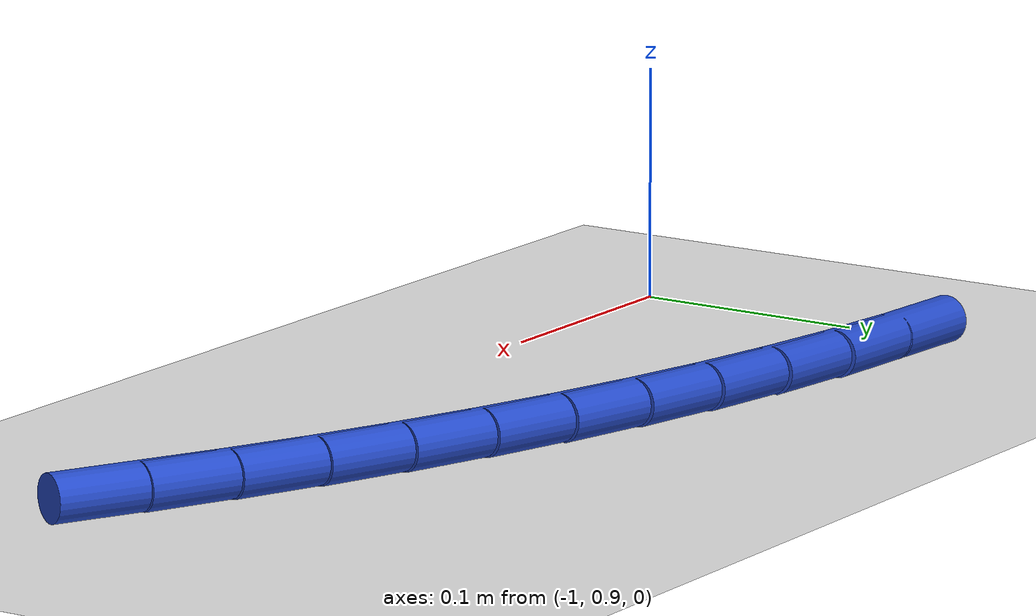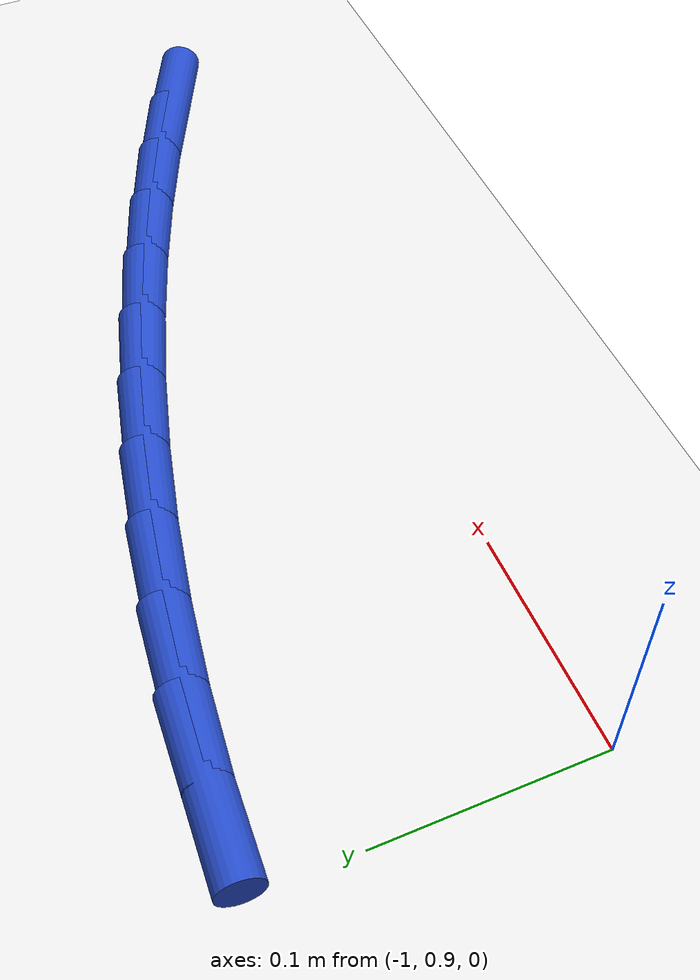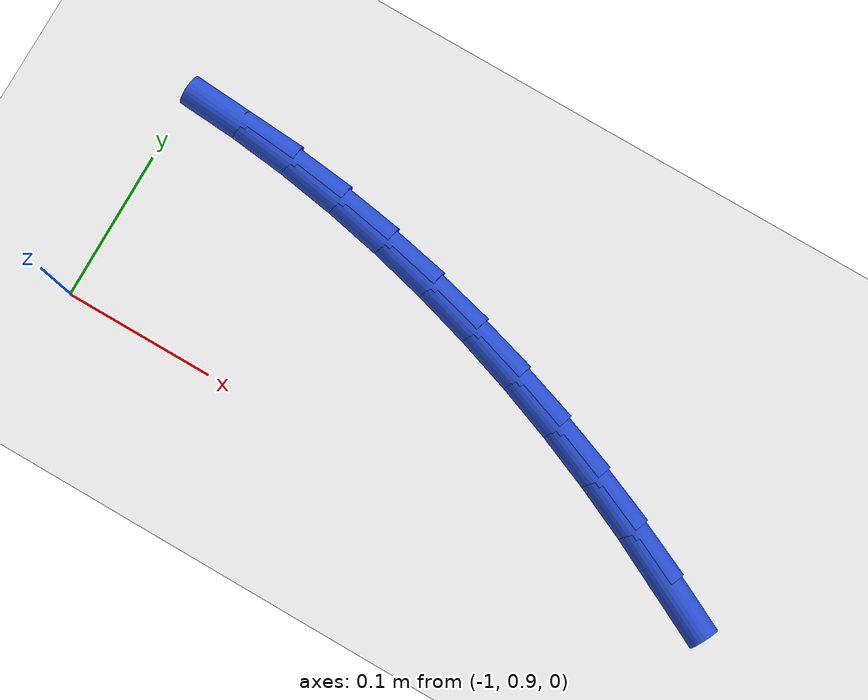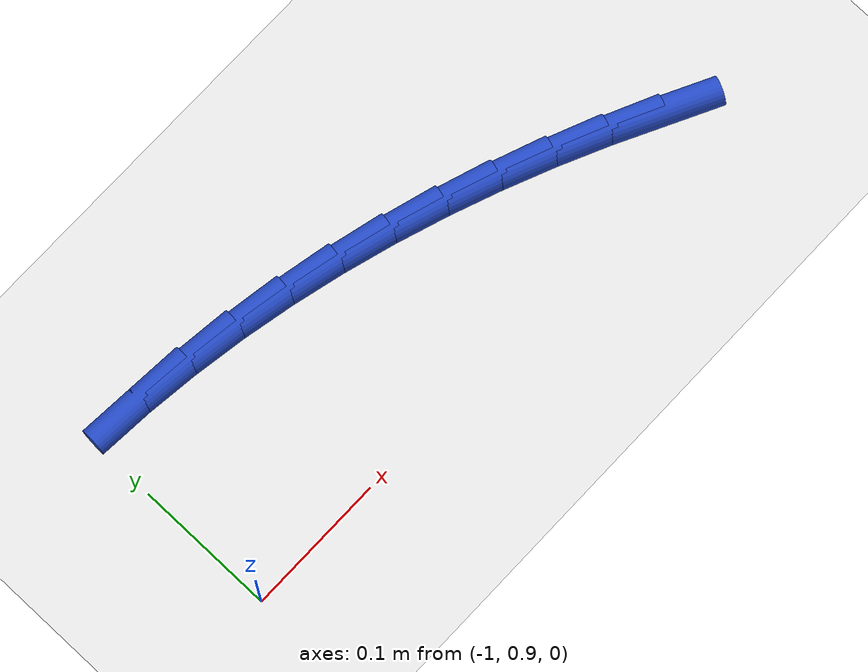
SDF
<sdf version="1.6">
 <world name="default">
  <model name="ground_plane">
   <static>1</static>
   <link name="link">
    <collision name="collision">
     <geometry><plane><normal>0 0 1</normal><size>100 100</size></plane></geometry>
     <surface><friction><ode><mu>100</mu><mu2>50</mu2></ode></friction></surface>
    </collision>
    <visual name="visual">
     <cast_shadows>0</cast_shadows>
     <geometry><plane><normal>0 0 1</normal><size>100 100</size></plane></geometry>
     <material>
      <script><uri>file://media/materials/scripts/gazebo.material</uri><name>Gazebo/WhiteGlow</name></script>
     </material>
    </visual>
   </link>
  </model>
  <model name="line">
   <link name="link_30">
    <pose>-0.5932956549696041 0.9307001131655158 0.01 0 1.57 -0.4667958939564992</pose>
    <collision name="collision">
     <geometry><cylinder><radius>0.01</radius><length>0.08</length></cylinder></geometry>
    </collision>
    <visual name="visual">
     <material>
      <script><name>Gazebo/Blue</name><uri>file://media/materials/scripts/gazebo.material</uri></script>
     </material>
     <geometry><cylinder><radius>0.01</radius><length>0.08</length></cylinder></geometry>
    </visual>
   </link>
   <link name="link_31">
    <pose>-0.6277613672244562 0.948068818441914 0.01 0 1.57 -0.4325614016017076</pose>
    <collision name="collision">
     <geometry><cylinder><radius>0.01</radius><length>0.08</length></cylinder></geometry>
    </collision>
    <visual name="visual">
     <material>
      <script><name>Gazebo/Blue</name><uri>file://media/materials/scripts/gazebo.material</uri></script>
     </material>
     <geometry><cylinder><radius>0.01</radius><length>0.08</length></cylinder></geometry>
    </visual>
   </link>
   <link name="link_32">
    <pose>-0.6628478625673129 0.9642691243940221 0.01 0 1.57 -0.3974134527887569</pose>
    <collision name="collision">
     <geometry><cylinder><radius>0.01</radius><length>0.08</length></cylinder></geometry>
    </collision>
    <visual name="visual">
     <material>
      <script><name>Gazebo/Blue</name><uri>file://media/materials/scripts/gazebo.material</uri></script>
     </material>
     <geometry><cylinder><radius>0.01</radius><length>0.08</length></cylinder></geometry>
    </visual>
   </link>
   <link name="link_33">
    <pose>-0.6985152439205533 0.9792404235195352 0.01 0 1.57 -0.36117393872409154</pose>
    <collision name="collision">
     <geometry><cylinder><radius>0.01</radius><length>0.08</length></cylinder></geometry>
    </collision>
    <visual name="visual">
     <material>
      <script><name>Gazebo/Blue</name><uri>file://media/materials/scripts/gazebo.material</uri></script>
     </material>
     <geometry><cylinder><radius>0.01</radius><length>0.08</length></cylinder></geometry>
    </visual>
   </link>
   <link name="link_34">
    <pose>-0.7347203636186392 0.9929166796126507 0.01 0 1.57 -0.3237586518239457</pose>
    <collision name="collision">
     <geometry><cylinder><radius>0.01</radius><length>0.08</length></cylinder></geometry>
    </collision>
    <visual name="visual">
     <material>
      <script><name>Gazebo/Blue</name><uri>file://media/materials/scripts/gazebo.material</uri></script>
     </material>
     <geometry><cylinder><radius>0.01</radius><length>0.08</length></cylinder></geometry>
    </visual>
   </link>
   <link name="link_35">
    <pose>-0.7714200739960319 1.0052318564675662 0.01 0 1.57 -0.2850912183244753</pose>
    <collision name="collision">
     <geometry><cylinder><radius>0.01</radius><length>0.08</length></cylinder></geometry>
    </collision>
    <visual name="visual">
     <material>
      <script><name>Gazebo/Blue</name><uri>file://media/materials/scripts/gazebo.material</uri></script>
     </material>
     <geometry><cylinder><radius>0.01</radius><length>0.08</length></cylinder></geometry>
    </visual>
   </link>
   <link name="link_36">
    <pose>-0.8085712273871934 1.0161199178784799 0.01 0 1.57 -0.24510514287906918</pose>
    <collision name="collision">
     <geometry><cylinder><radius>0.01</radius><length>0.08</length></cylinder></geometry>
    </collision>
    <visual name="visual">
     <material>
      <script><name>Gazebo/Blue</name><uri>file://media/materials/scripts/gazebo.material</uri></script>
     </material>
     <geometry><cylinder><radius>0.01</radius><length>0.08</length></cylinder></geometry>
    </visual>
   </link>
   <link name="link_37">
    <pose>-0.8461306761265852 1.025514827639589 0.01 0 1.57 -0.20374623582066057</pose>
    <collision name="collision">
     <geometry><cylinder><radius>0.01</radius><length>0.08</length></cylinder></geometry>
    </collision>
    <visual name="visual">
     <material>
      <script><name>Gazebo/Blue</name><uri>file://media/materials/scripts/gazebo.material</uri></script>
     </material>
     <geometry><cylinder><radius>0.01</radius><length>0.08</length></cylinder></geometry>
    </visual>
   </link>
   <link name="link_38">
    <pose>-0.8840552725486686 1.0333505495450916 0.01 0 1.57 -0.16097538476243362</pose>
    <collision name="collision">
     <geometry><cylinder><radius>0.01</radius><length>0.08</length></cylinder></geometry>
    </collision>
    <visual name="visual">
     <material>
      <script><name>Gazebo/Blue</name><uri>file://media/materials/scripts/gazebo.material</uri></script>
     </material>
     <geometry><cylinder><radius>0.01</radius><length>0.08</length></cylinder></geometry>
    </visual>
   </link>
   <link name="link_39">
    <pose>-0.9223018689879054 1.0395610473891852 0.01 0 1.57 -0.11677159319889402</pose>
    <collision name="collision">
     <geometry><cylinder><radius>0.01</radius><length>0.08</length></cylinder></geometry>
    </collision>
    <visual name="visual">
     <material>
      <script><name>Gazebo/Blue</name><uri>file://media/materials/scripts/gazebo.material</uri></script>
     </material>
     <geometry><cylinder><radius>0.01</radius><length>0.08</length></cylinder></geometry>
    </visual>
   </link>
   <link name="link_40">
    <pose>-0.9608273177787579 1.0440802849660684 0.01 0 1.57 -0.07113516022922692</pose>
    <collision name="collision">
     <geometry><cylinder><radius>0.01</radius><length>0.08</length></cylinder></geometry>
    </collision>
    <visual name="visual">
     <material>
      <script><name>Gazebo/Blue</name><uri>file://media/materials/scripts/gazebo.material</uri></script>
     </material>
     <geometry><cylinder><radius>0.01</radius><length>0.08</length></cylinder></geometry>
    </visual>
   </link>
  </model>
 </world>
</sdf>
